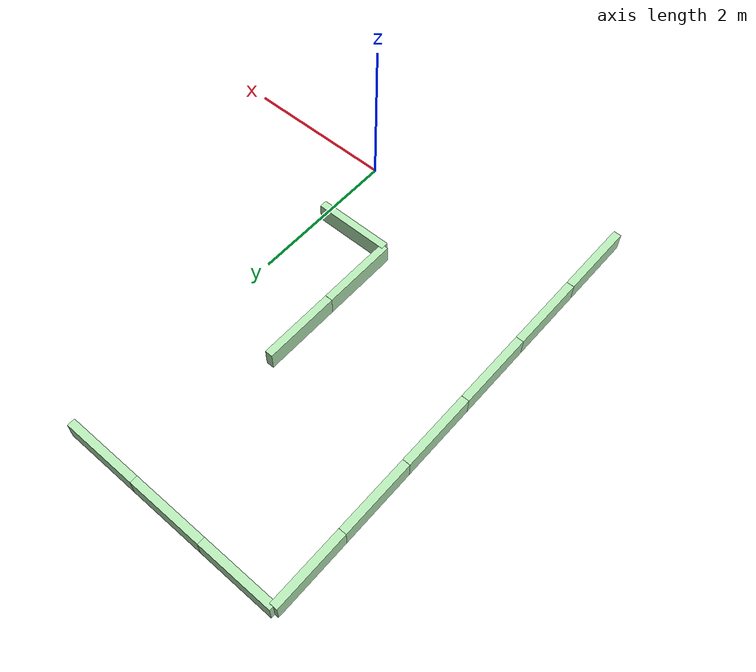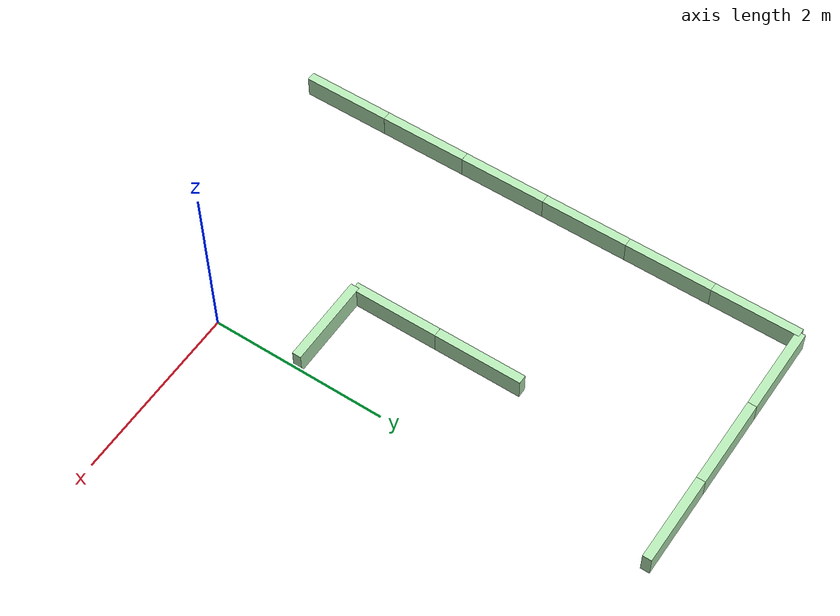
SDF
<sdf version="1.6">
 <world name="default">
  <model name="wall_100_25h_1">
   <link name="link">
    <inertial>
     <mass>1</mass>
     <inertia>
      <ixx>0.166667</ixx>
      <ixy>0</ixy>
      <ixz>0</ixz>
      <iyy>0.166667</iyy>
      <iyz>0</iyz>
      <izz>0.166667</izz>
     </inertia>
    </inertial>
    <visual name="visual">
     <geometry><box><size>1 0.1 0.25</size></box></geometry>
     <material>
      <script><name>Gazebo/Grey</name><uri>file://media/materials/scripts/gazebo.material</uri></script>
      <ambient>0.3 0.5 0.3 1</ambient>
      <diffuse>0.7 0.9 0.7 1</diffuse>
      <specular>0.01 0.02 0.01 1</specular>
      <emissive>0 0 0 1</emissive>
      <lighting>1</lighting>
      <shader type="vertex"><normal_map>__default__</normal_map></shader>
     </material>
    </visual>
    <collision name="collision">
     <geometry><box><size>1 0.1 0.25</size></box></geometry>
     <surface>
      <friction>
       <ode><mu>1</mu><mu2>1</mu2><fdir1>0 0 0</fdir1><slip1>0</slip1><slip2>0</slip2></ode>
       <torsional>
        <coefficient>1</coefficient>
        <patch_radius>0</patch_radius>
        <surface_radius>0</surface_radius>
        <use_patch_radius>1</use_patch_radius>
        <ode><slip>0</slip></ode>
       </torsional>
      </friction>
      <bounce><restitution_coefficient>0</restitution_coefficient><threshold>1e+06</threshold></bounce>
      <contact>
       <collide_without_contact>0</collide_without_contact>
       <collide_without_contact_bitmask>1</collide_without_contact_bitmask>
       <collide_bitmask>1</collide_bitmask>
       <ode>
        <soft_cfm>0</soft_cfm>
        <soft_erp>0.2</soft_erp>
        <kp>1e+13</kp>
        <kd>1</kd>
        <max_vel>0.01</max_vel>
        <min_depth>0</min_depth>
       </ode>
       <bullet>
        <split_impulse>1</split_impulse>
        <split_impulse_penetration_threshold>-0.01</split_impulse_penetration_threshold>
        <soft_cfm>0</soft_cfm>
        <soft_erp>0.2</soft_erp>
        <kp>1e+13</kp>
        <kd>1</kd>
       </bullet>
      </contact>
     </surface>
    </collision>
   </link>
   <static>1</static>
   <pose>-0.5 1 0.125 0.000404 -0 0</pose>
  </model>
  <model name="wall_100_25h_1_clone_9_clone_clone_8">
   <link name="link">
    <inertial>
     <mass>1</mass>
     <inertia>
      <ixx>0.166667</ixx>
      <ixy>0</ixy>
      <ixz>0</ixz>
      <iyy>0.166667</iyy>
      <iyz>0</iyz>
      <izz>0.166667</izz>
     </inertia>
    </inertial>
    <visual name="visual">
     <geometry><box><size>1 0.1 0.25</size></box></geometry>
     <material>
      <script><name>Gazebo/Grey</name><uri>file://media/materials/scripts/gazebo.material</uri></script>
      <ambient>0.3 0.5 0.3 1</ambient>
      <diffuse>0.7 0.9 0.7 1</diffuse>
      <specular>0.01 0.02 0.01 1</specular>
      <emissive>0 0 0 1</emissive>
      <lighting>1</lighting>
      <shader type="vertex"><normal_map>__default__</normal_map></shader>
     </material>
    </visual>
    <collision name="collision">
     <geometry><box><size>1 0.1 0.25</size></box></geometry>
     <surface>
      <friction>
       <ode><mu>1</mu><mu2>1</mu2><fdir1>0 0 0</fdir1><slip1>0</slip1><slip2>0</slip2></ode>
       <torsional>
        <coefficient>1</coefficient>
        <patch_radius>0</patch_radius>
        <surface_radius>0</surface_radius>
        <use_patch_radius>1</use_patch_radius>
        <ode><slip>0</slip></ode>
       </torsional>
      </friction>
      <bounce><restitution_coefficient>0</restitution_coefficient><threshold>1e+06</threshold></bounce>
      <contact>
       <collide_without_contact>0</collide_without_contact>
       <collide_without_contact_bitmask>1</collide_without_contact_bitmask>
       <collide_bitmask>1</collide_bitmask>
       <ode>
        <soft_cfm>0</soft_cfm>
        <soft_erp>0.2</soft_erp>
        <kp>1e+13</kp>
        <kd>1</kd>
        <max_vel>0.01</max_vel>
        <min_depth>0</min_depth>
       </ode>
       <bullet>
        <split_impulse>1</split_impulse>
        <split_impulse_penetration_threshold>-0.01</split_impulse_penetration_threshold>
        <soft_cfm>0</soft_cfm>
        <soft_erp>0.2</soft_erp>
        <kp>1e+13</kp>
        <kd>1</kd>
       </bullet>
      </contact>
     </surface>
    </collision>
   </link>
   <static>1</static>
   <pose>-1 1.5 0.125 0 0.000404 -1.57111</pose>
  </model>
  <model name="wall_100_25h_1_clone_9_clone_clone_9">
   <link name="link">
    <inertial>
     <mass>1</mass>
     <inertia>
      <ixx>0.166667</ixx>
      <ixy>0</ixy>
      <ixz>0</ixz>
      <iyy>0.166667</iyy>
      <iyz>0</iyz>
      <izz>0.166667</izz>
     </inertia>
    </inertial>
    <visual name="visual">
     <geometry><box><size>1 0.1 0.25</size></box></geometry>
     <material>
      <script><name>Gazebo/Grey</name><uri>file://media/materials/scripts/gazebo.material</uri></script>
      <ambient>0.3 0.5 0.3 1</ambient>
      <diffuse>0.7 0.9 0.7 1</diffuse>
      <specular>0.01 0.02 0.01 1</specular>
      <emissive>0 0 0 1</emissive>
      <lighting>1</lighting>
      <shader type="vertex"><normal_map>__default__</normal_map></shader>
     </material>
    </visual>
    <collision name="collision">
     <geometry><box><size>1 0.1 0.25</size></box></geometry>
     <surface>
      <friction>
       <ode><mu>1</mu><mu2>1</mu2><fdir1>0 0 0</fdir1><slip1>0</slip1><slip2>0</slip2></ode>
       <torsional>
        <coefficient>1</coefficient>
        <patch_radius>0</patch_radius>
        <surface_radius>0</surface_radius>
        <use_patch_radius>1</use_patch_radius>
        <ode><slip>0</slip></ode>
       </torsional>
      </friction>
      <bounce><restitution_coefficient>0</restitution_coefficient><threshold>1e+06</threshold></bounce>
      <contact>
       <collide_without_contact>0</collide_without_contact>
       <collide_without_contact_bitmask>1</collide_without_contact_bitmask>
       <collide_bitmask>1</collide_bitmask>
       <ode>
        <soft_cfm>0</soft_cfm>
        <soft_erp>0.2</soft_erp>
        <kp>1e+13</kp>
        <kd>1</kd>
        <max_vel>0.01</max_vel>
        <min_depth>0</min_depth>
       </ode>
       <bullet>
        <split_impulse>1</split_impulse>
        <split_impulse_penetration_threshold>-0.01</split_impulse_penetration_threshold>
        <soft_cfm>0</soft_cfm>
        <soft_erp>0.2</soft_erp>
        <kp>1e+13</kp>
        <kd>1</kd>
       </bullet>
      </contact>
     </surface>
    </collision>
   </link>
   <static>1</static>
   <pose>-1 2.5 0.125 0 0.000404 -1.57111</pose>
  </model>
  <model name="wall_100_25h_1_clone_9_clone_clone_10">
   <link name="link">
    <inertial>
     <mass>1</mass>
     <inertia>
      <ixx>0.166667</ixx>
      <ixy>0</ixy>
      <ixz>0</ixz>
      <iyy>0.166667</iyy>
      <iyz>0</iyz>
      <izz>0.166667</izz>
     </inertia>
    </inertial>
    <visual name="visual">
     <geometry><box><size>1 0.1 0.25</size></box></geometry>
     <material>
      <script><name>Gazebo/Grey</name><uri>file://media/materials/scripts/gazebo.material</uri></script>
      <ambient>0.3 0.5 0.3 1</ambient>
      <diffuse>0.7 0.9 0.7 1</diffuse>
      <specular>0.01 0.02 0.01 1</specular>
      <emissive>0 0 0 1</emissive>
      <lighting>1</lighting>
      <shader type="vertex"><normal_map>__default__</normal_map></shader>
     </material>
    </visual>
    <collision name="collision">
     <geometry><box><size>1 0.1 0.25</size></box></geometry>
     <surface>
      <friction>
       <ode><mu>1</mu><mu2>1</mu2><fdir1>0 0 0</fdir1><slip1>0</slip1><slip2>0</slip2></ode>
       <torsional>
        <coefficient>1</coefficient>
        <patch_radius>0</patch_radius>
        <surface_radius>0</surface_radius>
        <use_patch_radius>1</use_patch_radius>
        <ode><slip>0</slip></ode>
       </torsional>
      </friction>
      <bounce><restitution_coefficient>0</restitution_coefficient><threshold>1e+06</threshold></bounce>
      <contact>
       <collide_without_contact>0</collide_without_contact>
       <collide_without_contact_bitmask>1</collide_without_contact_bitmask>
       <collide_bitmask>1</collide_bitmask>
       <ode>
        <soft_cfm>0</soft_cfm>
        <soft_erp>0.2</soft_erp>
        <kp>1e+13</kp>
        <kd>1</kd>
        <max_vel>0.01</max_vel>
        <min_depth>0</min_depth>
       </ode>
       <bullet>
        <split_impulse>1</split_impulse>
        <split_impulse_penetration_threshold>-0.01</split_impulse_penetration_threshold>
        <soft_cfm>0</soft_cfm>
        <soft_erp>0.2</soft_erp>
        <kp>1e+13</kp>
        <kd>1</kd>
       </bullet>
      </contact>
     </surface>
    </collision>
   </link>
   <static>1</static>
   <pose>-3 -0.5 0.125 0 0.000404 -1.57111</pose>
  </model>
  <model name="wall_100_25h_1_clone_9_clone_clone_11">
   <link name="link">
    <inertial>
     <mass>1</mass>
     <inertia>
      <ixx>0.166667</ixx>
      <ixy>0</ixy>
      <ixz>0</ixz>
      <iyy>0.166667</iyy>
      <iyz>0</iyz>
      <izz>0.166667</izz>
     </inertia>
    </inertial>
    <visual name="visual">
     <geometry><box><size>1 0.1 0.25</size></box></geometry>
     <material>
      <script><name>Gazebo/Grey</name><uri>file://media/materials/scripts/gazebo.material</uri></script>
      <ambient>0.3 0.5 0.3 1</ambient>
      <diffuse>0.7 0.9 0.7 1</diffuse>
      <specular>0.01 0.02 0.01 1</specular>
      <emissive>0 0 0 1</emissive>
      <lighting>1</lighting>
      <shader type="vertex"><normal_map>__default__</normal_map></shader>
     </material>
    </visual>
    <collision name="collision">
     <geometry><box><size>1 0.1 0.25</size></box></geometry>
     <surface>
      <friction>
       <ode><mu>1</mu><mu2>1</mu2><fdir1>0 0 0</fdir1><slip1>0</slip1><slip2>0</slip2></ode>
       <torsional>
        <coefficient>1</coefficient>
        <patch_radius>0</patch_radius>
        <surface_radius>0</surface_radius>
        <use_patch_radius>1</use_patch_radius>
        <ode><slip>0</slip></ode>
       </torsional>
      </friction>
      <bounce><restitution_coefficient>0</restitution_coefficient><threshold>1e+06</threshold></bounce>
      <contact>
       <collide_without_contact>0</collide_without_contact>
       <collide_without_contact_bitmask>1</collide_without_contact_bitmask>
       <collide_bitmask>1</collide_bitmask>
       <ode>
        <soft_cfm>0</soft_cfm>
        <soft_erp>0.2</soft_erp>
        <kp>1e+13</kp>
        <kd>1</kd>
        <max_vel>0.01</max_vel>
        <min_depth>0</min_depth>
       </ode>
       <bullet>
        <split_impulse>1</split_impulse>
        <split_impulse_penetration_threshold>-0.01</split_impulse_penetration_threshold>
        <soft_cfm>0</soft_cfm>
        <soft_erp>0.2</soft_erp>
        <kp>1e+13</kp>
        <kd>1</kd>
       </bullet>
      </contact>
     </surface>
    </collision>
   </link>
   <static>1</static>
   <pose>-3 0.5 0.125 0 0.000404 -1.57111</pose>
  </model>
  <model name="wall_100_25h_1_clone_9_clone_clone_12">
   <link name="link">
    <inertial>
     <mass>1</mass>
     <inertia>
      <ixx>0.166667</ixx>
      <ixy>0</ixy>
      <ixz>0</ixz>
      <iyy>0.166667</iyy>
      <iyz>0</iyz>
      <izz>0.166667</izz>
     </inertia>
    </inertial>
    <visual name="visual">
     <geometry><box><size>1 0.1 0.25</size></box></geometry>
     <material>
      <script><name>Gazebo/Grey</name><uri>file://media/materials/scripts/gazebo.material</uri></script>
      <ambient>0.3 0.5 0.3 1</ambient>
      <diffuse>0.7 0.9 0.7 1</diffuse>
      <specular>0.01 0.02 0.01 1</specular>
      <emissive>0 0 0 1</emissive>
      <lighting>1</lighting>
      <shader type="vertex"><normal_map>__default__</normal_map></shader>
     </material>
    </visual>
    <collision name="collision">
     <geometry><box><size>1 0.1 0.25</size></box></geometry>
     <surface>
      <friction>
       <ode><mu>1</mu><mu2>1</mu2><fdir1>0 0 0</fdir1><slip1>0</slip1><slip2>0</slip2></ode>
       <torsional>
        <coefficient>1</coefficient>
        <patch_radius>0</patch_radius>
        <surface_radius>0</surface_radius>
        <use_patch_radius>1</use_patch_radius>
        <ode><slip>0</slip></ode>
       </torsional>
      </friction>
      <bounce><restitution_coefficient>0</restitution_coefficient><threshold>1e+06</threshold></bounce>
      <contact>
       <collide_without_contact>0</collide_without_contact>
       <collide_without_contact_bitmask>1</collide_without_contact_bitmask>
       <collide_bitmask>1</collide_bitmask>
       <ode>
        <soft_cfm>0</soft_cfm>
        <soft_erp>0.2</soft_erp>
        <kp>1e+13</kp>
        <kd>1</kd>
        <max_vel>0.01</max_vel>
        <min_depth>0</min_depth>
       </ode>
       <bullet>
        <split_impulse>1</split_impulse>
        <split_impulse_penetration_threshold>-0.01</split_impulse_penetration_threshold>
        <soft_cfm>0</soft_cfm>
        <soft_erp>0.2</soft_erp>
        <kp>1e+13</kp>
        <kd>1</kd>
       </bullet>
      </contact>
     </surface>
    </collision>
   </link>
   <static>1</static>
   <pose>-3 1.5 0.125 0 0.000404 -1.57111</pose>
  </model>
  <model name="wall_100_25h_1_clone_9_clone_clone_13">
   <link name="link">
    <inertial>
     <mass>1</mass>
     <inertia>
      <ixx>0.166667</ixx>
      <ixy>0</ixy>
      <ixz>0</ixz>
      <iyy>0.166667</iyy>
      <iyz>0</iyz>
      <izz>0.166667</izz>
     </inertia>
    </inertial>
    <visual name="visual">
     <geometry><box><size>1 0.1 0.25</size></box></geometry>
     <material>
      <script><name>Gazebo/Grey</name><uri>file://media/materials/scripts/gazebo.material</uri></script>
      <ambient>0.3 0.5 0.3 1</ambient>
      <diffuse>0.7 0.9 0.7 1</diffuse>
      <specular>0.01 0.02 0.01 1</specular>
      <emissive>0 0 0 1</emissive>
      <lighting>1</lighting>
      <shader type="vertex"><normal_map>__default__</normal_map></shader>
     </material>
    </visual>
    <collision name="collision">
     <geometry><box><size>1 0.1 0.25</size></box></geometry>
     <surface>
      <friction>
       <ode><mu>1</mu><mu2>1</mu2><fdir1>0 0 0</fdir1><slip1>0</slip1><slip2>0</slip2></ode>
       <torsional>
        <coefficient>1</coefficient>
        <patch_radius>0</patch_radius>
        <surface_radius>0</surface_radius>
        <use_patch_radius>1</use_patch_radius>
        <ode><slip>0</slip></ode>
       </torsional>
      </friction>
      <bounce><restitution_coefficient>0</restitution_coefficient><threshold>1e+06</threshold></bounce>
      <contact>
       <collide_without_contact>0</collide_without_contact>
       <collide_without_contact_bitmask>1</collide_without_contact_bitmask>
       <collide_bitmask>1</collide_bitmask>
       <ode>
        <soft_cfm>0</soft_cfm>
        <soft_erp>0.2</soft_erp>
        <kp>1e+13</kp>
        <kd>1</kd>
        <max_vel>0.01</max_vel>
        <min_depth>0</min_depth>
       </ode>
       <bullet>
        <split_impulse>1</split_impulse>
        <split_impulse_penetration_threshold>-0.01</split_impulse_penetration_threshold>
        <soft_cfm>0</soft_cfm>
        <soft_erp>0.2</soft_erp>
        <kp>1e+13</kp>
        <kd>1</kd>
       </bullet>
      </contact>
     </surface>
    </collision>
   </link>
   <static>1</static>
   <pose>-3 2.5 0.125 0 0.000404 -1.57111</pose>
  </model>
  <model name="wall_100_25h_1_clone_7_clone_2">
   <link name="link">
    <inertial>
     <mass>1</mass>
     <inertia>
      <ixx>0.166667</ixx>
      <ixy>0</ixy>
      <ixz>0</ixz>
      <iyy>0.166667</iyy>
      <iyz>0</iyz>
      <izz>0.166667</izz>
     </inertia>
    </inertial>
    <visual name="visual">
     <geometry><box><size>1 0.1 0.25</size></box></geometry>
     <material>
      <script><name>Gazebo/Grey</name><uri>file://media/materials/scripts/gazebo.material</uri></script>
      <ambient>0.3 0.5 0.3 1</ambient>
      <diffuse>0.7 0.9 0.7 1</diffuse>
      <specular>0.01 0.02 0.01 1</specular>
      <emissive>0 0 0 1</emissive>
      <lighting>1</lighting>
      <shader type="vertex"><normal_map>__default__</normal_map></shader>
     </material>
    </visual>
    <collision name="collision">
     <geometry><box><size>1 0.1 0.25</size></box></geometry>
     <surface>
      <friction>
       <ode><mu>1</mu><mu2>1</mu2><fdir1>0 0 0</fdir1><slip1>0</slip1><slip2>0</slip2></ode>
       <torsional>
        <coefficient>1</coefficient>
        <patch_radius>0</patch_radius>
        <surface_radius>0</surface_radius>
        <use_patch_radius>1</use_patch_radius>
        <ode><slip>0</slip></ode>
       </torsional>
      </friction>
      <bounce><restitution_coefficient>0</restitution_coefficient><threshold>1e+06</threshold></bounce>
      <contact>
       <collide_without_contact>0</collide_without_contact>
       <collide_without_contact_bitmask>1</collide_without_contact_bitmask>
       <collide_bitmask>1</collide_bitmask>
       <ode>
        <soft_cfm>0</soft_cfm>
        <soft_erp>0.2</soft_erp>
        <kp>1e+13</kp>
        <kd>1</kd>
        <max_vel>0.01</max_vel>
        <min_depth>0</min_depth>
       </ode>
       <bullet>
        <split_impulse>1</split_impulse>
        <split_impulse_penetration_threshold>-0.01</split_impulse_penetration_threshold>
        <soft_cfm>0</soft_cfm>
        <soft_erp>0.2</soft_erp>
        <kp>1e+13</kp>
        <kd>1</kd>
       </bullet>
      </contact>
     </surface>
    </collision>
   </link>
   <static>1</static>
   <pose>-0.5 5 0.125 0.000404 -0 0</pose>
  </model>
  <model name="wall_100_25h_1_clone_7_clone_3">
   <link name="link">
    <inertial>
     <mass>1</mass>
     <inertia>
      <ixx>0.166667</ixx>
      <ixy>0</ixy>
      <ixz>0</ixz>
      <iyy>0.166667</iyy>
      <iyz>0</iyz>
      <izz>0.166667</izz>
     </inertia>
    </inertial>
    <visual name="visual">
     <geometry><box><size>1 0.1 0.25</size></box></geometry>
     <material>
      <script><name>Gazebo/Grey</name><uri>file://media/materials/scripts/gazebo.material</uri></script>
      <ambient>0.3 0.5 0.3 1</ambient>
      <diffuse>0.7 0.9 0.7 1</diffuse>
      <specular>0.01 0.02 0.01 1</specular>
      <emissive>0 0 0 1</emissive>
      <lighting>1</lighting>
      <shader type="vertex"><normal_map>__default__</normal_map></shader>
     </material>
    </visual>
    <collision name="collision">
     <geometry><box><size>1 0.1 0.25</size></box></geometry>
     <surface>
      <friction>
       <ode><mu>1</mu><mu2>1</mu2><fdir1>0 0 0</fdir1><slip1>0</slip1><slip2>0</slip2></ode>
       <torsional>
        <coefficient>1</coefficient>
        <patch_radius>0</patch_radius>
        <surface_radius>0</surface_radius>
        <use_patch_radius>1</use_patch_radius>
        <ode><slip>0</slip></ode>
       </torsional>
      </friction>
      <bounce><restitution_coefficient>0</restitution_coefficient><threshold>1e+06</threshold></bounce>
      <contact>
       <collide_without_contact>0</collide_without_contact>
       <collide_without_contact_bitmask>1</collide_without_contact_bitmask>
       <collide_bitmask>1</collide_bitmask>
       <ode>
        <soft_cfm>0</soft_cfm>
        <soft_erp>0.2</soft_erp>
        <kp>1e+13</kp>
        <kd>1</kd>
        <max_vel>0.01</max_vel>
        <min_depth>0</min_depth>
       </ode>
       <bullet>
        <split_impulse>1</split_impulse>
        <split_impulse_penetration_threshold>-0.01</split_impulse_penetration_threshold>
        <soft_cfm>0</soft_cfm>
        <soft_erp>0.2</soft_erp>
        <kp>1e+13</kp>
        <kd>1</kd>
       </bullet>
      </contact>
     </surface>
    </collision>
   </link>
   <static>1</static>
   <pose>-1.5 5 0.125 0.000404 -0 0</pose>
  </model>
  <model name="wall_100_25h_1_clone_7_clone_4">
   <link name="link">
    <inertial>
     <mass>1</mass>
     <inertia>
      <ixx>0.166667</ixx>
      <ixy>0</ixy>
      <ixz>0</ixz>
      <iyy>0.166667</iyy>
      <iyz>0</iyz>
      <izz>0.166667</izz>
     </inertia>
    </inertial>
    <visual name="visual">
     <geometry><box><size>1 0.1 0.25</size></box></geometry>
     <material>
      <script><name>Gazebo/Grey</name><uri>file://media/materials/scripts/gazebo.material</uri></script>
      <ambient>0.3 0.5 0.3 1</ambient>
      <diffuse>0.7 0.9 0.7 1</diffuse>
      <specular>0.01 0.02 0.01 1</specular>
      <emissive>0 0 0 1</emissive>
      <lighting>1</lighting>
      <shader type="vertex"><normal_map>__default__</normal_map></shader>
     </material>
    </visual>
    <collision name="collision">
     <geometry><box><size>1 0.1 0.25</size></box></geometry>
     <surface>
      <friction>
       <ode><mu>1</mu><mu2>1</mu2><fdir1>0 0 0</fdir1><slip1>0</slip1><slip2>0</slip2></ode>
       <torsional>
        <coefficient>1</coefficient>
        <patch_radius>0</patch_radius>
        <surface_radius>0</surface_radius>
        <use_patch_radius>1</use_patch_radius>
        <ode><slip>0</slip></ode>
       </torsional>
      </friction>
      <bounce><restitution_coefficient>0</restitution_coefficient><threshold>1e+06</threshold></bounce>
      <contact>
       <collide_without_contact>0</collide_without_contact>
       <collide_without_contact_bitmask>1</collide_without_contact_bitmask>
       <collide_bitmask>1</collide_bitmask>
       <ode>
        <soft_cfm>0</soft_cfm>
        <soft_erp>0.2</soft_erp>
        <kp>1e+13</kp>
        <kd>1</kd>
        <max_vel>0.01</max_vel>
        <min_depth>0</min_depth>
       </ode>
       <bullet>
        <split_impulse>1</split_impulse>
        <split_impulse_penetration_threshold>-0.01</split_impulse_penetration_threshold>
        <soft_cfm>0</soft_cfm>
        <soft_erp>0.2</soft_erp>
        <kp>1e+13</kp>
        <kd>1</kd>
       </bullet>
      </contact>
     </surface>
    </collision>
   </link>
   <static>1</static>
   <pose>-2.5 5 0.125 0.000404 -0 0</pose>
  </model>
  <model name="wall_100_25h_1_clone_9_clone_clone_13_clone">
   <link name="link">
    <inertial>
     <mass>1</mass>
     <inertia>
      <ixx>0.166667</ixx>
      <ixy>0</ixy>
      <ixz>0</ixz>
      <iyy>0.166667</iyy>
      <iyz>0</iyz>
      <izz>0.166667</izz>
     </inertia>
    </inertial>
    <visual name="visual">
     <geometry><box><size>1 0.1 0.25</size></box></geometry>
     <material>
      <script><name>Gazebo/Grey</name><uri>file://media/materials/scripts/gazebo.material</uri></script>
      <ambient>0.3 0.5 0.3 1</ambient>
      <diffuse>0.7 0.9 0.7 1</diffuse>
      <specular>0.01 0.02 0.01 1</specular>
      <emissive>0 0 0 1</emissive>
      <lighting>1</lighting>
      <shader type="vertex"><normal_map>__default__</normal_map></shader>
     </material>
    </visual>
    <collision name="collision">
     <geometry><box><size>1 0.1 0.25</size></box></geometry>
     <surface>
      <friction>
       <ode><mu>1</mu><mu2>1</mu2><fdir1>0 0 0</fdir1><slip1>0</slip1><slip2>0</slip2></ode>
       <torsional>
        <coefficient>1</coefficient>
        <patch_radius>0</patch_radius>
        <surface_radius>0</surface_radius>
        <use_patch_radius>1</use_patch_radius>
        <ode><slip>0</slip></ode>
       </torsional>
      </friction>
      <bounce><restitution_coefficient>0</restitution_coefficient><threshold>1e+06</threshold></bounce>
      <contact>
       <collide_without_contact>0</collide_without_contact>
       <collide_without_contact_bitmask>1</collide_without_contact_bitmask>
       <collide_bitmask>1</collide_bitmask>
       <ode>
        <soft_cfm>0</soft_cfm>
        <soft_erp>0.2</soft_erp>
        <kp>1e+13</kp>
        <kd>1</kd>
        <max_vel>0.01</max_vel>
        <min_depth>0</min_depth>
       </ode>
       <bullet>
        <split_impulse>1</split_impulse>
        <split_impulse_penetration_threshold>-0.01</split_impulse_penetration_threshold>
        <soft_cfm>0</soft_cfm>
        <soft_erp>0.2</soft_erp>
        <kp>1e+13</kp>
        <kd>1</kd>
       </bullet>
      </contact>
     </surface>
    </collision>
   </link>
   <static>1</static>
   <pose>-3 3.5 0.125 0 0.000404 -1.57111</pose>
  </model>
  <model name="wall_100_25h_1_clone_9_clone_clone_13_clone_0">
   <link name="link">
    <inertial>
     <mass>1</mass>
     <inertia>
      <ixx>0.166667</ixx>
      <ixy>0</ixy>
      <ixz>0</ixz>
      <iyy>0.166667</iyy>
      <iyz>0</iyz>
      <izz>0.166667</izz>
     </inertia>
    </inertial>
    <visual name="visual">
     <geometry><box><size>1 0.1 0.25</size></box></geometry>
     <material>
      <script><name>Gazebo/Grey</name><uri>file://media/materials/scripts/gazebo.material</uri></script>
      <ambient>0.3 0.5 0.3 1</ambient>
      <diffuse>0.7 0.9 0.7 1</diffuse>
      <specular>0.01 0.02 0.01 1</specular>
      <emissive>0 0 0 1</emissive>
      <lighting>1</lighting>
      <shader type="vertex"><normal_map>__default__</normal_map></shader>
     </material>
    </visual>
    <collision name="collision">
     <geometry><box><size>1 0.1 0.25</size></box></geometry>
     <surface>
      <friction>
       <ode><mu>1</mu><mu2>1</mu2><fdir1>0 0 0</fdir1><slip1>0</slip1><slip2>0</slip2></ode>
       <torsional>
        <coefficient>1</coefficient>
        <patch_radius>0</patch_radius>
        <surface_radius>0</surface_radius>
        <use_patch_radius>1</use_patch_radius>
        <ode><slip>0</slip></ode>
       </torsional>
      </friction>
      <bounce><restitution_coefficient>0</restitution_coefficient><threshold>1e+06</threshold></bounce>
      <contact>
       <collide_without_contact>0</collide_without_contact>
       <collide_without_contact_bitmask>1</collide_without_contact_bitmask>
       <collide_bitmask>1</collide_bitmask>
       <ode>
        <soft_cfm>0</soft_cfm>
        <soft_erp>0.2</soft_erp>
        <kp>1e+13</kp>
        <kd>1</kd>
        <max_vel>0.01</max_vel>
        <min_depth>0</min_depth>
       </ode>
       <bullet>
        <split_impulse>1</split_impulse>
        <split_impulse_penetration_threshold>-0.01</split_impulse_penetration_threshold>
        <soft_cfm>0</soft_cfm>
        <soft_erp>0.2</soft_erp>
        <kp>1e+13</kp>
        <kd>1</kd>
       </bullet>
      </contact>
     </surface>
    </collision>
   </link>
   <static>1</static>
   <pose>-3 4.5 0.125 0 0.000404 -1.57111</pose>
  </model>
 </world>
</sdf>
